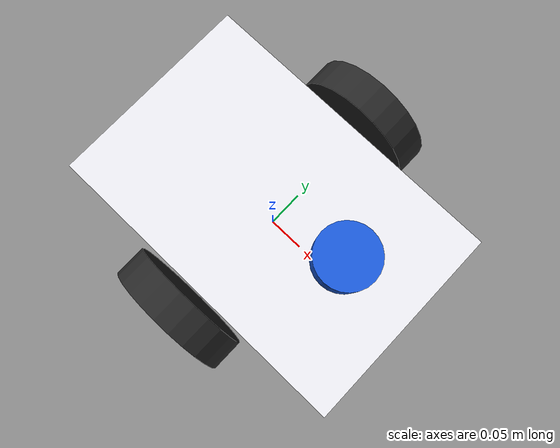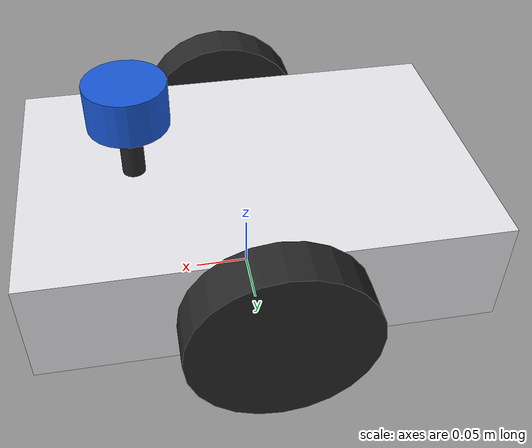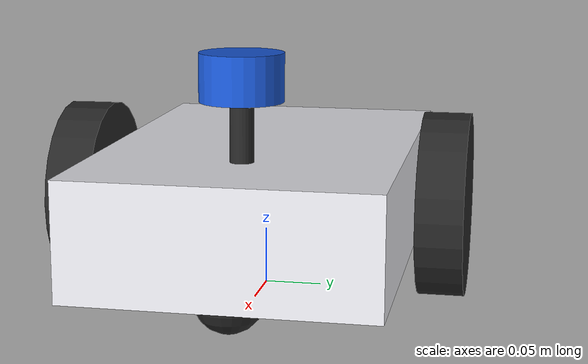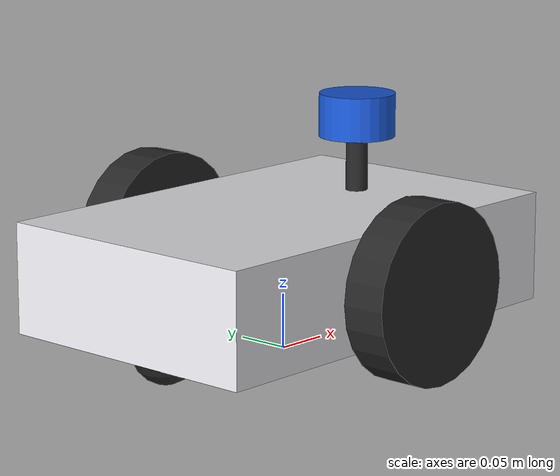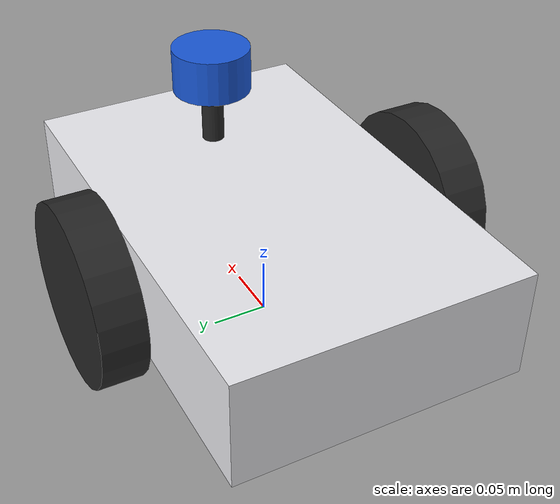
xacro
<?xml version="1.0"?>
<robot name="mini_rover" xmlns:xacro="http://www.ros.org/wiki/xacro">

  <xacro:property name="chassis_length" value="0.40"/>
  <xacro:property name="chassis_width" value="0.26"/>
  <xacro:property name="chassis_height" value="0.10"/>
  <xacro:property name="chassis_mass" value="3.0"/>
  <xacro:property name="wheel_radius" value="0.08"/>
  <xacro:property name="wheel_width" value="0.04"/>
  <xacro:property name="wheel_mass" value="0.3"/>
  <xacro:property name="wheel_separation" value="0.32"/>
  <xacro:property name="caster_radius" value="0.03"/>
  <xacro:property name="caster_x" value="0.15"/>
  <xacro:property name="lidar_x" value="0.10"/>
  <xacro:property name="lidar_z" value="0.20"/>

  <material name="chassis"><color rgba="0.92 0.92 0.94 1"/></material>
  <material name="dark"><color rgba="0.15 0.15 0.15 1"/></material>
  <material name="lidar"><color rgba="0.10 0.35 0.85 1"/></material>

  <xacro:macro name="caster" params="x">
    <visual>
      <origin xyz="${x} 0 ${caster_radius - wheel_radius}"/>
      <geometry><sphere radius="${caster_radius}"/></geometry>
      <material name="dark"/>
    </visual>
    <collision>
      <origin xyz="${x} 0 ${caster_radius - wheel_radius}"/>
      <geometry><sphere radius="${caster_radius}"/></geometry>
    </collision>
  </xacro:macro>

  <!-- base_link: ground level, under the center of the wheel axle -->
  <link name="base_link"/>

  <link name="chassis">
    <visual>
      <geometry><box size="${chassis_length} ${chassis_width} ${chassis_height}"/></geometry>
      <material name="chassis"/>
    </visual>
    <collision>
      <geometry><box size="${chassis_length} ${chassis_width} ${chassis_height}"/></geometry>
    </collision>
    <xacro:caster x="${caster_x}"/>
    <xacro:caster x="${-caster_x}"/>
    <visual>
      <origin xyz="${lidar_x} 0 ${(chassis_height / 2 + lidar_z - wheel_radius - 0.02) / 2}"/>
      <geometry><cylinder radius="0.01" length="${lidar_z - wheel_radius - 0.02 - chassis_height / 2}"/></geometry>
      <material name="dark"/>
    </visual>
    <inertial>
      <mass value="${chassis_mass}"/>
      <inertia ixx="${chassis_mass * (chassis_width**2 + chassis_height**2) / 12}" ixy="0" ixz="0"
               iyy="${chassis_mass * (chassis_length**2 + chassis_height**2) / 12}" iyz="0"
               izz="${chassis_mass * (chassis_length**2 + chassis_width**2) / 12}"/>
    </inertial>
  </link>

  <joint name="chassis_joint" type="fixed">
    <parent link="base_link"/>
    <child link="chassis"/>
    <origin xyz="0 0 ${wheel_radius}"/>
  </joint>

  <xacro:macro name="wheel" params="side y">
    <link name="${side}_wheel">
      <visual>
        <origin rpy="${pi / 2} 0 0"/>
        <geometry><cylinder radius="${wheel_radius}" length="${wheel_width}"/></geometry>
        <material name="dark"/>
      </visual>
      <collision>
        <geometry><sphere radius="${wheel_radius}"/></geometry>
      </collision>
      <inertial>
        <mass value="${wheel_mass}"/>
        <inertia ixx="${wheel_mass * (3 * wheel_radius**2 + wheel_width**2) / 12}" ixy="0" ixz="0"
                 iyy="${wheel_mass * wheel_radius**2 / 2}" iyz="0"
                 izz="${wheel_mass * (3 * wheel_radius**2 + wheel_width**2) / 12}"/>
      </inertial>
    </link>
    <joint name="${side}_wheel_joint" type="continuous">
      <parent link="base_link"/>
      <child link="${side}_wheel"/>
      <origin xyz="0 ${y} ${wheel_radius}"/>
      <axis xyz="0 1 0"/>
    </joint>
    <gazebo reference="${side}_wheel">
      <mu1>1.0</mu1>
      <mu2>1.0</mu2>
    </gazebo>
  </xacro:macro>
  <xacro:wheel side="left" y="${wheel_separation / 2}"/>
  <xacro:wheel side="right" y="${-wheel_separation / 2}"/>

  <link name="laser_link">
    <visual>
      <geometry><cylinder radius="0.035" length="0.04"/></geometry>
      <material name="lidar"/>
    </visual>
  </link>

  <joint name="laser_joint" type="fixed">
    <parent link="base_link"/>
    <child link="laser_link"/>
    <origin xyz="${lidar_x} 0 ${lidar_z}"/>
  </joint>

  <gazebo reference="chassis">
    <mu1>0.0</mu1>
    <mu2>0.0</mu2>
  </gazebo>

  <gazebo reference="laser_link">
    <sensor name="lidar" type="gpu_lidar">
      <topic>scan</topic>
      <ignition_frame_id>laser_link</ignition_frame_id>
      <update_rate>10</update_rate>
      <always_on>true</always_on>
      <visualize>false</visualize>
      <ray>
        <scan>
          <horizontal>
            <samples>360</samples>
            <resolution>1</resolution>
            <min_angle>-3.14159</min_angle>
            <max_angle>3.12414</max_angle>
          </horizontal>
        </scan>
        <range>
          <min>0.12</min>
          <max>12.0</max>
          <resolution>0.01</resolution>
        </range>
        <noise>
          <type>gaussian</type>
          <mean>0.0</mean>
          <stddev>0.01</stddev>
        </noise>
      </ray>
    </sensor>
  </gazebo>

  <gazebo>
    <plugin filename="ignition-gazebo-diff-drive-system" name="ignition::gazebo::systems::DiffDrive">
      <left_joint>left_wheel_joint</left_joint>
      <right_joint>right_wheel_joint</right_joint>
      <wheel_separation>${wheel_separation}</wheel_separation>
      <wheel_radius>${wheel_radius}</wheel_radius>
      <topic>/model/mini_rover/cmd_vel</topic>
      <max_linear_velocity>1.5</max_linear_velocity>
      <min_linear_velocity>-1.5</min_linear_velocity>
      <max_angular_velocity>3.0</max_angular_velocity>
      <min_angular_velocity>-3.0</min_angular_velocity>
      <max_linear_acceleration>1.0</max_linear_acceleration>
      <min_linear_acceleration>-1.0</min_linear_acceleration>
      <max_angular_acceleration>4.0</max_angular_acceleration>
      <min_angular_acceleration>-4.0</min_angular_acceleration>
    </plugin>
    <plugin filename="ignition-gazebo-odometry-publisher-system" name="ignition::gazebo::systems::OdometryPublisher">
      <odom_frame>map</odom_frame>
      <robot_base_frame>base_link</robot_base_frame>
      <odom_topic>/ground_truth</odom_topic>
      <tf_topic>/ground_truth/tf</tf_topic>
      <odom_publish_frequency>50</odom_publish_frequency>
      <dimensions>2</dimensions>
    </plugin>
    <plugin filename="ignition-gazebo-joint-state-publisher-system" name="ignition::gazebo::systems::JointStatePublisher">
      <topic>/joint_states</topic>
    </plugin>
  </gazebo>

</robot>
